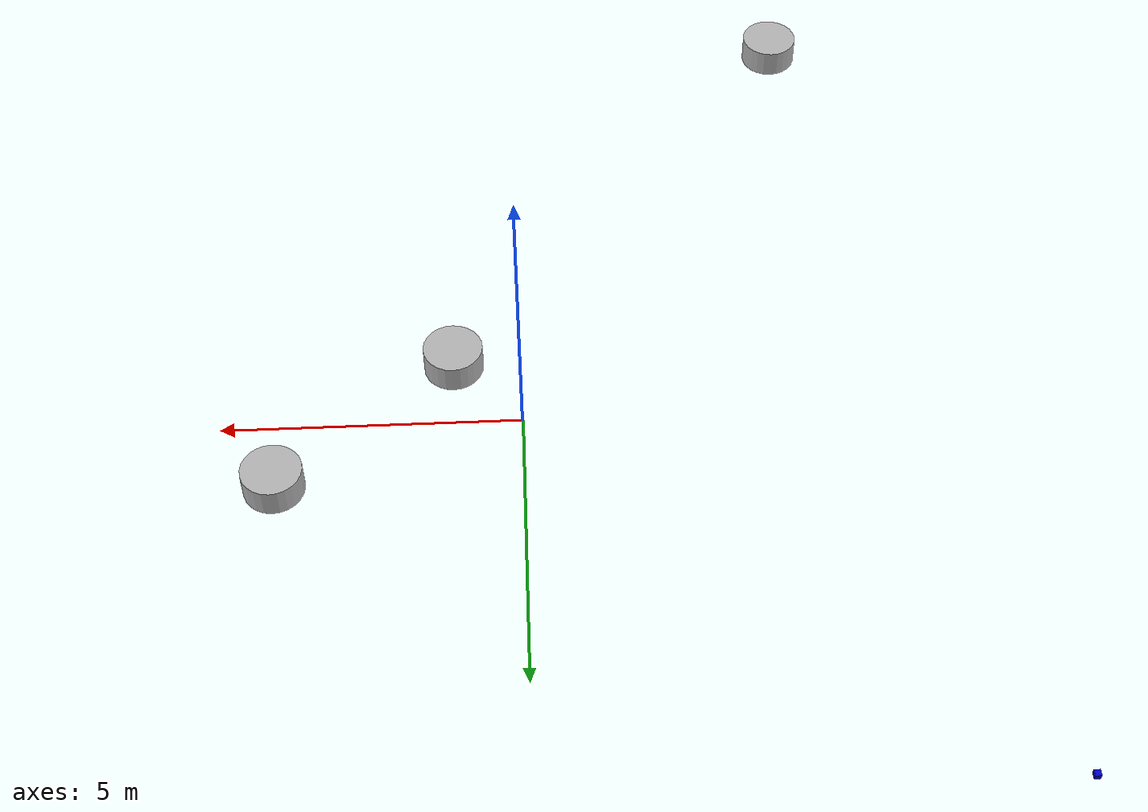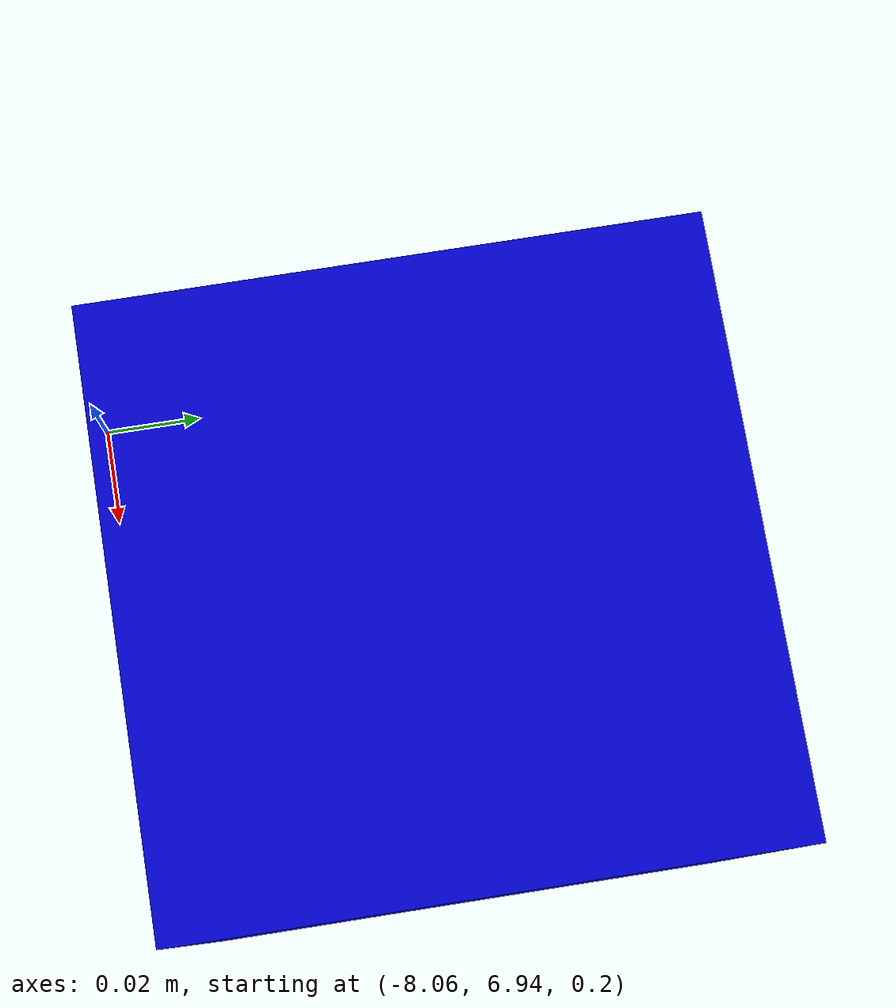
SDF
<sdf version="1.6">
 <world name="husarion_world">
  <physics name="1ms" type="ignored">
   <max_step_size>0.001</max_step_size>
   <real_time_factor>1.0</real_time_factor>
  </physics>
  <plugin filename="ignition-gazebo-contact-system" name="gz::sim::systems::Contact"/>
  <plugin filename="ignition-gazebo-imu-system" name="gz::sim::systems::Imu"/>
  <plugin filename="ignition-gazebo-physics-system" name="gz::sim::systems::Physics"/>
  <plugin filename="ignition-gazebo-scene-broadcaster-system" name="gz::sim::systems::SceneBroadcaster"/>
  <plugin filename="ignition-gazebo-sensors-system" name="gz::sim::systems::Sensors"/>
  <plugin filename="ignition-gazebo-user-commands-system" name="gz::sim::systems::UserCommands"/>
  <model name="camera">
   <static>true</static>
   <link name="camera_link">
    <pose>-8 7 0.25 0 0 1.57</pose>
    <inertial><mass>0.1</mass><inertia><ixx>1e-6</ixx><iyy>1e-6</iyy><izz>1e-6</izz></inertia></inertial>
    <visual name="camera_visual">
     <geometry><box><size>0.1 0.1 0.1</size></box></geometry>
     <material>
      <ambient>0 0 0.8 1</ambient>
      <diffuse>0 0 0.8 1</diffuse>
      <specular>0.1 0.1 0.1 1</specular>
     </material>
    </visual>
    <sensor name="camera" type="camera">
     <camera>
      <horizontal_fov>1.047</horizontal_fov>
      <image><width>640</width><height>480</height><format>R8G8B8</format></image>
      <clip><near>0.1</near><far>10.0</far></clip>
     </camera>
     <always_on>1</always_on>
     <update_rate>30</update_rate>
     <visualize>true</visualize>
     <topic>camera</topic>
    </sensor>
   </link>
  </model>
  <model name="cylinder">
   <pose>1.15 -1.22 0.25 0 0 0</pose>
   <link name="cylinder_link">
    <inertial>
     <inertia>
      <ixx>0.14580000000000001</ixx>
      <ixy>0</ixy>
      <ixz>0</ixz>
      <iyy>0.14580000000000001</iyy>
      <iyz>0</iyz>
      <izz>0.125</izz>
     </inertia>
     <mass>1</mass>
    </inertial>
    <collision name="cylinder_collision">
     <geometry><cylinder><radius>0.5</radius><length>0.5</length></cylinder></geometry>
    </collision>
    <visual name="cylinder_visual">
     <geometry><cylinder><radius>0.5</radius><length>0.5</length></cylinder></geometry>
     <material>
      <ambient>0.3 0.3 0.3 1</ambient>
      <diffuse>0.7 0.7 0.7 1</diffuse>
      <specular>1 1 1 1</specular>
     </material>
    </visual>
   </link>
   <static>false</static>
  </model>
  <model name="cylinder_0">
   <pose>-5.0 -9.0 0.25 -0 0 0</pose>
   <link name="cylinder_link">
    <inertial>
     <inertia>
      <ixx>0.14580000000000001</ixx>
      <ixy>0</ixy>
      <ixz>0</ixz>
      <iyy>0.14580000000000001</iyy>
      <iyz>0</iyz>
      <izz>0.125</izz>
     </inertia>
     <mass>1</mass>
    </inertial>
    <collision name="cylinder_collision">
     <geometry><cylinder><radius>0.5</radius><length>0.5</length></cylinder></geometry>
    </collision>
    <visual name="cylinder_visual">
     <geometry><cylinder><radius>0.5</radius><length>0.5</length></cylinder></geometry>
     <material>
      <ambient>0.3 0.3 0.3 1</ambient>
      <diffuse>0.7 0.7 0.7 1</diffuse>
      <specular>1 1 1 1</specular>
     </material>
    </visual>
   </link>
   <static>false</static>
  </model>
  <model name="cylinder_1">
   <pose>4.03 1.22 0.25 0 0 -0</pose>
   <link name="cylinder_link">
    <inertial>
     <inertia>
      <ixx>0.14580000000000001</ixx>
      <ixy>0</ixy>
      <ixz>0</ixz>
      <iyy>0.14580000000000001</iyy>
      <iyz>0</iyz>
      <izz>0.125</izz>
     </inertia>
     <mass>1</mass>
    </inertial>
    <collision name="cylinder_collision">
     <geometry><cylinder><radius>0.5</radius><length>0.5</length></cylinder></geometry>
    </collision>
    <visual name="cylinder_visual">
     <geometry><cylinder><radius>0.5</radius><length>0.5</length></cylinder></geometry>
     <material>
      <ambient>0.3 0.3 0.3 1</ambient>
      <diffuse>0.7 0.7 0.7 1</diffuse>
      <specular>1 1 1 1</specular>
     </material>
    </visual>
   </link>
   <static>false</static>
  </model>
  <spherical_coordinates>
   <surface_model>EARTH_WGS84</surface_model>
   <world_frame_orientation>ENU</world_frame_orientation>
   <latitude_deg>50.088384</latitude_deg>
   <longitude_deg>19.939128</longitude_deg>
   <elevation>0</elevation>
   <heading_deg>0</heading_deg>
  </spherical_coordinates>
 </world>
</sdf>
